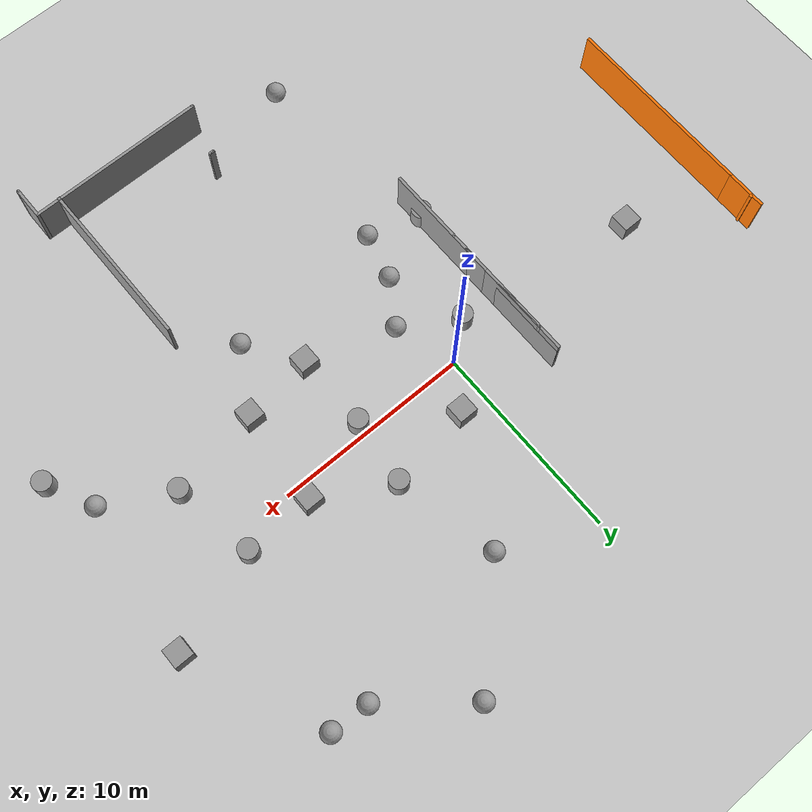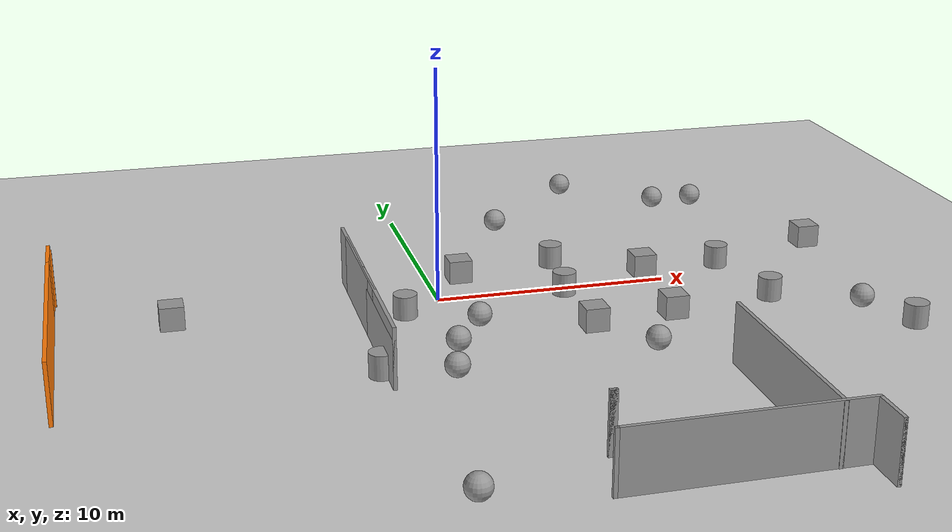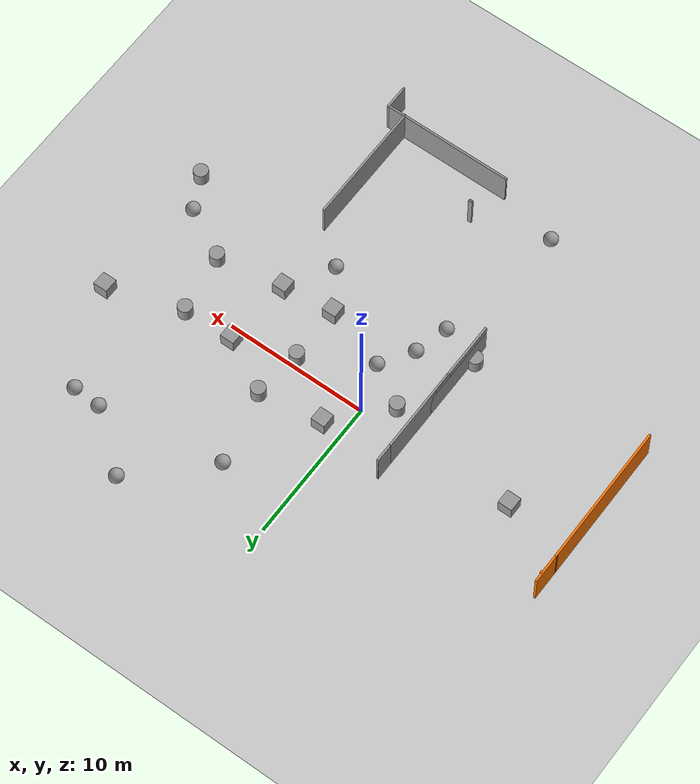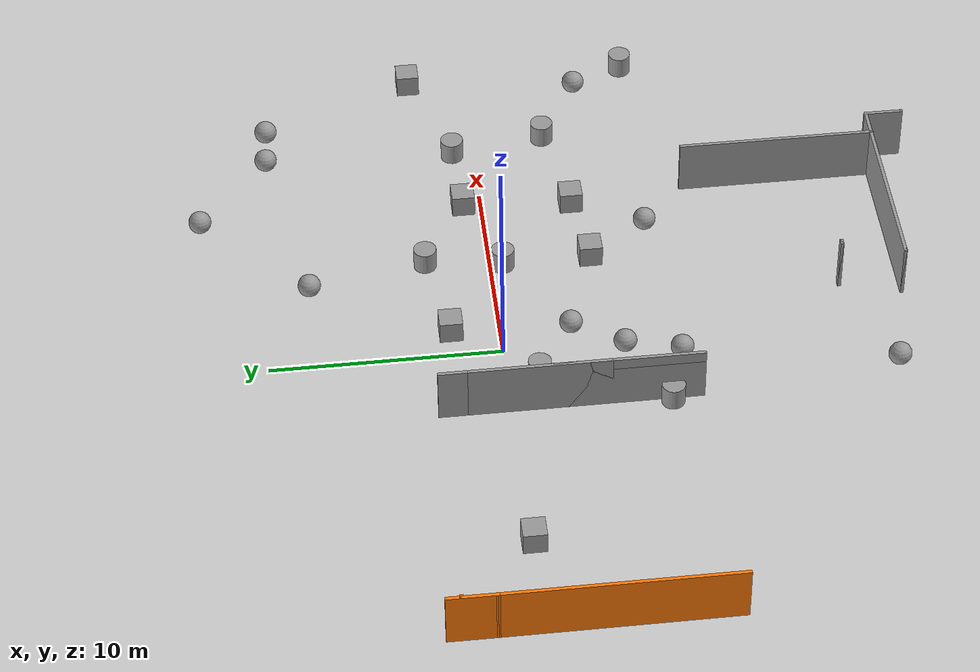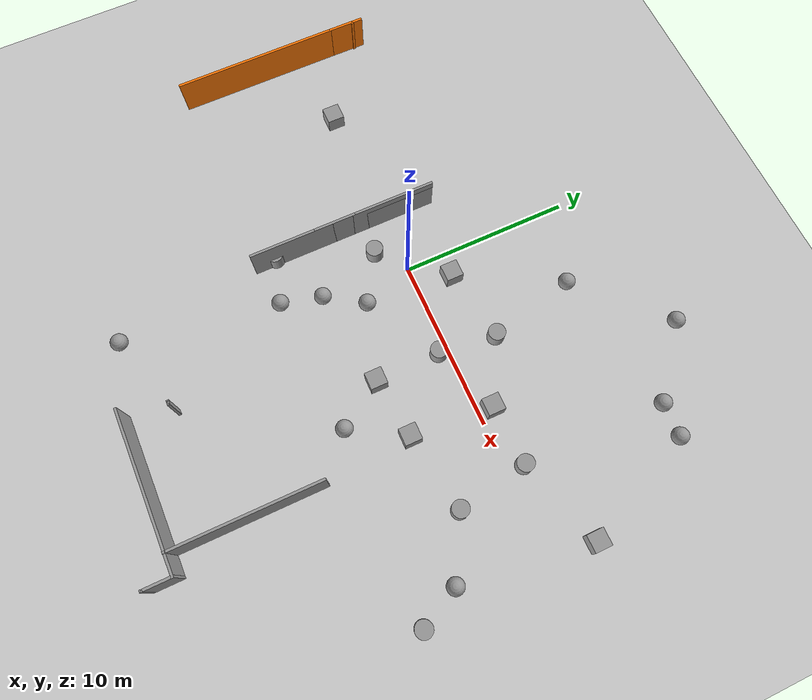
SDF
<sdf version="1.6">
 <world name="default">
  <model name="ground_plane">
   <static>1</static>
   <link name="link">
    <collision name="collision">
     <geometry><plane><normal>0 0 1</normal><size>100 100</size></plane></geometry>
     <surface>
      <contact><collide_bitmask>65535</collide_bitmask></contact>
      <friction><ode><mu>100</mu><mu2>50</mu2></ode></friction>
     </surface>
    </collision>
    <visual name="visual">
     <cast_shadows>0</cast_shadows>
     <geometry><plane><normal>0 0 1</normal><size>100 100</size></plane></geometry>
     <material>
      <script><uri>file://media/materials/scripts/gazebo.material</uri><name>Gazebo/Grey</name></script>
     </material>
    </visual>
   </link>
  </model>
  <model name="Untitled">
   <link name="link_0">
    <pose>9.70155 -2.43092 0 0 -0 0</pose>
    <inertial>
     <mass>1</mass>
     <inertia><ixx>0.1</ixx><ixy>0</ixy><ixz>0</ixz><iyy>0.1</iyy><iyz>0</iyz><izz>0.1</izz></inertia>
    </inertial>
    <visual name="visual">
     <geometry><sphere><radius>0.5</radius></sphere></geometry>
     <material>
      <lighting>1</lighting>
      <script><uri>file://media/materials/scripts/gazebo.material</uri><name>Gazebo/Grey</name></script>
      <shader type="pixel"/>
      <ambient>0.3 0.3 0.3 1</ambient>
      <diffuse>0.7 0.7 0.7 1</diffuse>
      <specular>0.01 0.01 0.01 1</specular>
      <emissive>0 0 0 1</emissive>
     </material>
    </visual>
    <collision name="collision">
     <geometry><sphere><radius>0.5</radius></sphere></geometry>
     <surface>
      <friction>
       <ode><mu>1</mu><mu2>1</mu2><fdir1>0 0 0</fdir1><slip1>0</slip1><slip2>0</slip2></ode>
       <torsional>
        <coefficient>1</coefficient>
        <patch_radius>0</patch_radius>
        <surface_radius>0</surface_radius>
        <use_patch_radius>1</use_patch_radius>
        <ode><slip>0</slip></ode>
       </torsional>
      </friction>
      <bounce><restitution_coefficient>0</restitution_coefficient><threshold>1e+06</threshold></bounce>
      <contact>
       <collide_without_contact>0</collide_without_contact>
       <collide_without_contact_bitmask>1</collide_without_contact_bitmask>
       <collide_bitmask>1</collide_bitmask>
       <ode>
        <soft_cfm>0</soft_cfm>
        <soft_erp>0.2</soft_erp>
        <kp>1e+13</kp>
        <kd>1</kd>
        <max_vel>0.01</max_vel>
        <min_depth>0</min_depth>
       </ode>
       <bullet>
        <split_impulse>1</split_impulse>
        <split_impulse_penetration_threshold>-0.01</split_impulse_penetration_threshold>
        <soft_cfm>0</soft_cfm>
        <soft_erp>0.2</soft_erp>
        <kp>1e+13</kp>
        <kd>1</kd>
       </bullet>
      </contact>
     </surface>
    </collision>
   </link>
   <link name="link_1">
    <pose>-8.50109 4.58038 0 0 -0 0</pose>
    <inertial>
     <mass>1</mass>
     <inertia>
      <ixx>0.166667</ixx>
      <ixy>0</ixy>
      <ixz>0</ixz>
      <iyy>0.166667</iyy>
      <iyz>0</iyz>
      <izz>0.166667</izz>
     </inertia>
    </inertial>
    <visual name="visual">
     <geometry><box><size>1 1 1</size></box></geometry>
     <material>
      <lighting>1</lighting>
      <script><uri>file://media/materials/scripts/gazebo.material</uri><name>Gazebo/Grey</name></script>
      <shader type="pixel"/>
      <ambient>0.3 0.3 0.3 1</ambient>
      <diffuse>0.7 0.7 0.7 1</diffuse>
      <specular>0.01 0.01 0.01 1</specular>
      <emissive>0 0 0 1</emissive>
     </material>
    </visual>
    <collision name="collision">
     <geometry><box><size>1 1 1</size></box></geometry>
     <surface>
      <friction>
       <ode><mu>1</mu><mu2>1</mu2><fdir1>0 0 0</fdir1><slip1>0</slip1><slip2>0</slip2></ode>
       <torsional>
        <coefficient>1</coefficient>
        <patch_radius>0</patch_radius>
        <surface_radius>0</surface_radius>
        <use_patch_radius>1</use_patch_radius>
        <ode><slip>0</slip></ode>
       </torsional>
      </friction>
      <bounce><restitution_coefficient>0</restitution_coefficient><threshold>1e+06</threshold></bounce>
      <contact>
       <collide_without_contact>0</collide_without_contact>
       <collide_without_contact_bitmask>1</collide_without_contact_bitmask>
       <collide_bitmask>1</collide_bitmask>
       <ode>
        <soft_cfm>0</soft_cfm>
        <soft_erp>0.2</soft_erp>
        <kp>1e+13</kp>
        <kd>1</kd>
        <max_vel>0.01</max_vel>
        <min_depth>0</min_depth>
       </ode>
       <bullet>
        <split_impulse>1</split_impulse>
        <split_impulse_penetration_threshold>-0.01</split_impulse_penetration_threshold>
        <soft_cfm>0</soft_cfm>
        <soft_erp>0.2</soft_erp>
        <kp>1e+13</kp>
        <kd>1</kd>
       </bullet>
      </contact>
     </surface>
    </collision>
   </link>
   <link name="link_2">
    <pose>-1.20043 -2.14946 0 0 -0 0</pose>
    <inertial>
     <mass>1</mass>
     <inertia><ixx>0.145833</ixx><ixy>0</ixy><ixz>0</ixz><iyy>0.145833</iyy><iyz>0</iyz><izz>0.125</izz></inertia>
    </inertial>
    <visual name="visual">
     <geometry><cylinder><radius>0.5</radius><length>1</length></cylinder></geometry>
     <material>
      <lighting>1</lighting>
      <script><uri>file://media/materials/scripts/gazebo.material</uri><name>Gazebo/Grey</name></script>
      <shader type="pixel"/>
      <ambient>0.3 0.3 0.3 1</ambient>
      <diffuse>0.7 0.7 0.7 1</diffuse>
      <specular>0.01 0.01 0.01 1</specular>
      <emissive>0 0 0 1</emissive>
     </material>
    </visual>
    <collision name="collision">
     <geometry><cylinder><radius>0.5</radius><length>1</length></cylinder></geometry>
     <surface>
      <friction>
       <ode><mu>1</mu><mu2>1</mu2><fdir1>0 0 0</fdir1><slip1>0</slip1><slip2>0</slip2></ode>
       <torsional>
        <coefficient>1</coefficient>
        <patch_radius>0</patch_radius>
        <surface_radius>0</surface_radius>
        <use_patch_radius>1</use_patch_radius>
        <ode><slip>0</slip></ode>
       </torsional>
      </friction>
      <bounce><restitution_coefficient>0</restitution_coefficient><threshold>1e+06</threshold></bounce>
      <contact>
       <collide_without_contact>0</collide_without_contact>
       <collide_without_contact_bitmask>1</collide_without_contact_bitmask>
       <collide_bitmask>1</collide_bitmask>
       <ode>
        <soft_cfm>0</soft_cfm>
        <soft_erp>0.2</soft_erp>
        <kp>1e+13</kp>
        <kd>1</kd>
        <max_vel>0.01</max_vel>
        <min_depth>0</min_depth>
       </ode>
       <bullet>
        <split_impulse>1</split_impulse>
        <split_impulse_penetration_threshold>-0.01</split_impulse_penetration_threshold>
        <soft_cfm>0</soft_cfm>
        <soft_erp>0.2</soft_erp>
        <kp>1e+13</kp>
        <kd>1</kd>
       </bullet>
      </contact>
     </surface>
    </collision>
   </link>
   <static>0</static>
   <pose>-2.53279 -4.62617 0.5 0 -0 0</pose>
  </model>
  <model name="unit_box">
   <pose>9.36247 0.829326 0.499995 0 1e-05 0</pose>
   <link name="link">
    <inertial>
     <mass>1</mass>
     <inertia>
      <ixx>0.166667</ixx>
      <ixy>0</ixy>
      <ixz>0</ixz>
      <iyy>0.166667</iyy>
      <iyz>0</iyz>
      <izz>0.166667</izz>
     </inertia>
    </inertial>
    <collision name="collision"><geometry><box><size>1 1 1</size></box></geometry></collision>
    <visual name="visual">
     <geometry><box><size>1 1 1</size></box></geometry>
     <material>
      <script><name>Gazebo/Grey</name><uri>file://media/materials/scripts/gazebo.material</uri></script>
     </material>
    </visual>
   </link>
  </model>
  <model name="unit_cylinder">
   <pose>13.6073 -3.20417 0.499992 -3e-06 3e-06 0</pose>
   <link name="link">
    <inertial>
     <mass>1</mass>
     <inertia><ixx>0.145833</ixx><ixy>0</ixy><ixz>0</ixz><iyy>0.145833</iyy><iyz>0</iyz><izz>0.125</izz></inertia>
    </inertial>
    <collision name="collision">
     <geometry><cylinder><radius>0.5</radius><length>1</length></cylinder></geometry>
    </collision>
    <visual name="visual">
     <geometry><cylinder><radius>0.5</radius><length>1</length></cylinder></geometry>
     <material>
      <script><name>Gazebo/Grey</name><uri>file://media/materials/scripts/gazebo.material</uri></script>
     </material>
    </visual>
   </link>
  </model>
  <model name="Untitled_0">
   <pose>-3.49 -2.52 0 0 -0 0</pose>
   <link name="Wall_3">
    <collision name="Wall_3_Collision">
     <geometry><box><size>2.5 0.15 2.5</size></box></geometry>
     <pose>0 0 1.25 0 -0 0</pose>
    </collision>
    <visual name="Wall_3_Visual">
     <pose>0 0 1.25 0 -0 0</pose>
     <geometry><box><size>2.5 0.15 2.5</size></box></geometry>
     <material>
      <script><uri>file://media/materials/scripts/gazebo.material</uri><name>Gazebo/Grey</name></script>
      <ambient>1 1 1 1</ambient>
     </material>
     <meta><layer>0</layer></meta>
    </visual>
    <pose>0 -0.475 0 0 0 -1.5708</pose>
   </link>
   <link name="Wall_4">
    <collision name="Wall_4_Collision">
     <geometry><box><size>0.15 0.15 2.5</size></box></geometry>
     <pose>0 0 1.25 0 -0 0</pose>
    </collision>
    <visual name="Wall_4_Visual">
     <pose>0 0 1.25 0 -0 0</pose>
     <geometry><box><size>0.15 0.15 2.5</size></box></geometry>
     <material>
      <script><uri>file://media/materials/scripts/gazebo.material</uri><name>Gazebo/Grey</name></script>
      <ambient>1 1 1 1</ambient>
     </material>
     <meta><layer>0</layer></meta>
    </visual>
    <pose>0 -1.65 0 0 -0 0</pose>
   </link>
   <link name="Wall_6">
    <collision name="Wall_6_Collision">
     <geometry><box><size>5 0.15 2.5</size></box></geometry>
     <pose>0 0 1.25 0 -0 0</pose>
    </collision>
    <visual name="Wall_6_Visual">
     <pose>0 0 1.25 0 -0 0</pose>
     <geometry><box><size>5 0.15 2.5</size></box></geometry>
     <material>
      <script><uri>file://media/materials/scripts/gazebo.material</uri><name>Gazebo/Grey</name></script>
      <ambient>1 1 1 1</ambient>
     </material>
     <meta><layer>0</layer></meta>
    </visual>
    <pose>0 3.125 0 0 -0 1.5708</pose>
   </link>
   <link name="Wall_7">
    <collision name="Wall_7_Collision">
     <geometry><box><size>11.25 0.15 2</size></box></geometry>
     <pose>0 0 1 0 -0 0</pose>
    </collision>
    <visual name="Wall_7_Visual">
     <pose>0 0 1 0 -0 0</pose>
     <geometry><box><size>11.25 0.15 2</size></box></geometry>
     <material>
      <script><uri>file://media/materials/scripts/gazebo.material</uri><name>Gazebo/Grey</name></script>
      <ambient>1 1 1 1</ambient>
     </material>
     <meta><layer>0</layer></meta>
    </visual>
    <pose>0 0 0 0 0 -1.5708</pose>
   </link>
   <link name="Wall_8">
    <collision name="Wall_8_Collision">
     <geometry><box><size>10 0.15 2.5</size></box></geometry>
     <pose>0 0 1.25 0 -0 0</pose>
    </collision>
    <visual name="Wall_8_Visual">
     <pose>0 0 1.25 0 -0 0</pose>
     <geometry><box><size>10 0.15 2.5</size></box></geometry>
     <material>
      <script><uri>file://media/materials/scripts/gazebo.material</uri><name>Gazebo/Grey</name></script>
      <ambient>1 1 1 1</ambient>
     </material>
     <meta><layer>0</layer></meta>
    </visual>
    <pose>0 -0.625 0 0 -0 1.5708</pose>
   </link>
   <link name="Wall_9">
    <collision name="Wall_9_Collision">
     <geometry><box><size>0.15 0.15 2.5</size></box></geometry>
     <pose>0 0 1.25 0 -0 0</pose>
    </collision>
    <visual name="Wall_9_Visual">
     <pose>0 0 1.25 0 -0 0</pose>
     <geometry><box><size>0.15 0.15 2.5</size></box></geometry>
     <material>
      <script><uri>file://media/materials/scripts/gazebo.material</uri><name>Gazebo/Grey</name></script>
      <ambient>1 1 1 1</ambient>
     </material>
     <meta><layer>0</layer></meta>
    </visual>
    <pose>0 4.3 0 0 -0 0</pose>
   </link>
   <static>1</static>
  </model>
  <model name="unit_sphere">
   <pose>-1.00192 -7.56104 0.5 0 -0 0</pose>
   <link name="link">
    <inertial>
     <mass>1</mass>
     <inertia><ixx>0.1</ixx><ixy>0</ixy><ixz>0</ixz><iyy>0.1</iyy><iyz>0</iyz><izz>0.1</izz></inertia>
    </inertial>
    <collision name="collision"><geometry><sphere><radius>0.5</radius></sphere></geometry></collision>
    <visual name="visual">
     <geometry><sphere><radius>0.5</radius></sphere></geometry>
     <material>
      <script><name>Gazebo/Grey</name><uri>file://media/materials/scripts/gazebo.material</uri></script>
     </material>
    </visual>
   </link>
  </model>
  <model name="unit_cylinder_0">
   <pose>18.0993 -7.39339 0.499992 -3e-06 3e-06 0</pose>
   <link name="link">
    <inertial>
     <mass>1</mass>
     <inertia><ixx>0.145833</ixx><ixy>0</ixy><ixz>0</ixz><iyy>0.145833</iyy><iyz>0</iyz><izz>0.125</izz></inertia>
    </inertial>
    <collision name="collision">
     <geometry><cylinder><radius>0.5</radius><length>1</length></cylinder></geometry>
    </collision>
    <visual name="visual">
     <geometry><cylinder><radius>0.5</radius><length>1</length></cylinder></geometry>
     <material>
      <script><name>Gazebo/Grey</name><uri>file://media/materials/scripts/gazebo.material</uri></script>
     </material>
    </visual>
   </link>
  </model>
  <model name="unit_box_0">
   <pose>17.9517 2.58922 0.499995 0 1e-05 0</pose>
   <link name="link">
    <inertial>
     <mass>1</mass>
     <inertia>
      <ixx>0.166667</ixx>
      <ixy>0</ixy>
      <ixz>0</ixz>
      <iyy>0.166667</iyy>
      <iyz>0</iyz>
      <izz>0.166667</izz>
     </inertia>
    </inertial>
    <collision name="collision"><geometry><box><size>1 1 1</size></box></geometry></collision>
    <visual name="visual">
     <geometry><box><size>1 1 1</size></box></geometry>
     <material>
      <script><name>Gazebo/Grey</name><uri>file://media/materials/scripts/gazebo.material</uri></script>
     </material>
    </visual>
   </link>
  </model>
  <model name="unit_cylinder_1">
   <pose>5.77175 2.83193 0.499992 -3e-06 3e-06 0</pose>
   <link name="link">
    <inertial>
     <mass>1</mass>
     <inertia><ixx>0.145833</ixx><ixy>0</ixy><ixz>0</ixz><iyy>0.145833</iyy><iyz>0</iyz><izz>0.125</izz></inertia>
    </inertial>
    <collision name="collision">
     <geometry><cylinder><radius>0.5</radius><length>1</length></cylinder></geometry>
    </collision>
    <visual name="visual">
     <geometry><cylinder><radius>0.5</radius><length>1</length></cylinder></geometry>
     <material>
      <script><name>Gazebo/Grey</name><uri>file://media/materials/scripts/gazebo.material</uri></script>
     </material>
    </visual>
   </link>
  </model>
  <model name="Untitled_1">
   <pose>-2.45197 -7.66378 0 0 -0 0</pose>
   <link name="Wall_11">
    <collision name="Wall_11_Collision">
     <geometry><box><size>0.3 0.15 2.5</size></box></geometry>
     <pose>0 0 1.25 0 -0 0</pose>
    </collision>
    <visual name="Wall_11_Visual">
     <pose>0 0 1.25 0 -0 0</pose>
     <geometry><box><size>0.3 0.15 2.5</size></box></geometry>
     <material>
      <script><uri>file://media/materials/scripts/gazebo.material</uri><name>Gazebo/Grey</name></script>
      <ambient>1 1 1 1</ambient>
     </material>
     <meta><layer>0</layer></meta>
    </visual>
    <pose>4.96192 -7.30972 0 0 -0 3.14159</pose>
   </link>
   <link name="Wall_12">
    <collision name="Wall_12_Collision">
     <geometry><box><size>0.3 0.15 2.5</size></box></geometry>
     <pose>0 0 1.25 0 -0 0</pose>
    </collision>
    <visual name="Wall_12_Visual">
     <pose>0 0 1.25 0 -0 0</pose>
     <geometry><box><size>0.3 0.15 2.5</size></box></geometry>
     <material>
      <script><uri>file://media/materials/scripts/gazebo.material</uri><name>Gazebo/Grey</name></script>
      <ambient>1 1 1 1</ambient>
     </material>
     <meta><layer>0</layer></meta>
    </visual>
    <pose>4.96192 -7.30972 0 0 -0 0</pose>
   </link>
   <link name="Wall_14">
    <collision name="Wall_14_Collision">
     <geometry><box><size>9.25 0.15 2.5</size></box></geometry>
     <pose>0 0 1.25 0 -0 0</pose>
    </collision>
    <visual name="Wall_14_Visual">
     <pose>0 0 1.25 0 -0 0</pose>
     <geometry><box><size>9.25 0.15 2.5</size></box></geometry>
     <material>
      <script><uri>file://media/materials/scripts/gazebo.material</uri><name>Gazebo/Grey</name></script>
      <ambient>1 1 1 1</ambient>
     </material>
     <meta><layer>0</layer></meta>
    </visual>
    <pose>8.6994 -9.93933 0 0 -0 3.14159</pose>
   </link>
   <link name="Wall_15">
    <collision name="Wall_15_Collision">
     <geometry><box><size>0.15 0.15 2.5</size></box></geometry>
     <pose>0 0 1.25 0 -0 0</pose>
    </collision>
    <visual name="Wall_15_Visual">
     <pose>0 0 1.25 0 -0 0</pose>
     <geometry><box><size>0.15 0.15 2.5</size></box></geometry>
     <material>
      <script><uri>file://media/materials/scripts/gazebo.material</uri><name>Gazebo/Grey</name></script>
      <ambient>1 1 1 1</ambient>
     </material>
     <meta><layer>0</layer></meta>
    </visual>
    <pose>4.1494 -9.93933 0 0 -0 0</pose>
   </link>
   <link name="Wall_16">
    <collision name="Wall_16_Collision">
     <geometry><box><size>0.15 0.15 2.5</size></box></geometry>
     <pose>0 0 1.25 0 -0 0</pose>
    </collision>
    <visual name="Wall_16_Visual">
     <pose>0 0 1.25 0 -0 0</pose>
     <geometry><box><size>0.15 0.15 2.5</size></box></geometry>
     <material>
      <script><uri>file://media/materials/scripts/gazebo.material</uri><name>Gazebo/Grey</name></script>
      <ambient>1 1 1 1</ambient>
     </material>
     <meta><layer>0</layer></meta>
    </visual>
    <pose>4.1494 -9.93933 0 0 -0 0</pose>
   </link>
   <link name="Wall_18">
    <collision name="Wall_18_Collision">
     <geometry><box><size>1.75 0.15 2.5</size></box></geometry>
     <pose>0 0 1.25 0 -0 0</pose>
    </collision>
    <visual name="Wall_18_Visual">
     <pose>0 0 1.25 0 -0 0</pose>
     <geometry><box><size>1.75 0.15 2.5</size></box></geometry>
     <material>
      <script><uri>file://media/materials/scripts/gazebo.material</uri><name>Gazebo/Grey</name></script>
      <ambient>1 1 1 1</ambient>
     </material>
     <meta><layer>0</layer></meta>
    </visual>
    <pose>13.2494 -10.7393 0 0 0 -1.5708</pose>
   </link>
   <link name="Wall_19">
    <collision name="Wall_19_Collision">
     <geometry><box><size>0.15 0.15 2.5</size></box></geometry>
     <pose>0 0 1.25 0 -0 0</pose>
    </collision>
    <visual name="Wall_19_Visual">
     <pose>0 0 1.25 0 -0 0</pose>
     <geometry><box><size>0.15 0.15 2.5</size></box></geometry>
     <material>
      <script><uri>file://media/materials/scripts/gazebo.material</uri><name>Gazebo/Grey</name></script>
      <ambient>1 1 1 1</ambient>
     </material>
     <meta><layer>0</layer></meta>
    </visual>
    <pose>13.2494 -11.5393 0 0 -0 0</pose>
   </link>
   <link name="Wall_21">
    <collision name="Wall_21_Collision">
     <geometry><box><size>8.75 0.15 2.5</size></box></geometry>
     <pose>0 0 1.25 0 -0 0</pose>
    </collision>
    <visual name="Wall_21_Visual">
     <pose>0 0 1.25 0 -0 0</pose>
     <geometry><box><size>8.75 0.15 2.5</size></box></geometry>
     <material>
      <script><uri>file://media/materials/scripts/gazebo.material</uri><name>Gazebo/Grey</name></script>
      <ambient>1 1 1 1</ambient>
     </material>
     <meta><layer>0</layer></meta>
    </visual>
    <pose>11.9953 -5.66275 0 0 0 -1.5708</pose>
   </link>
   <link name="Wall_22">
    <collision name="Wall_22_Collision">
     <geometry><box><size>0.16 0.15 2.5</size></box></geometry>
     <pose>0 0 1.25 0 -0 0</pose>
    </collision>
    <visual name="Wall_22_Visual">
     <pose>0 0 1.25 0 -0 0</pose>
     <geometry><box><size>0.16 0.15 2.5</size></box></geometry>
     <material>
      <script><uri>file://media/materials/scripts/gazebo.material</uri><name>Gazebo/Grey</name></script>
      <ambient>1 1 1 1</ambient>
     </material>
     <meta><layer>0</layer></meta>
    </visual>
    <pose>12.0003 -9.96275 0 0 -0 0</pose>
   </link>
   <link name="Wall_24">
    <collision name="Wall_24_Collision">
     <geometry><box><size>10 0.15 2.5</size></box></geometry>
     <pose>0 0 1.25 0 -0 0</pose>
    </collision>
    <visual name="Wall_24_Visual">
     <pose>0 0 1.25 0 -0 0</pose>
     <geometry><box><size>10 0.15 2.5</size></box></geometry>
     <material>
      <script><uri>file://media/materials/scripts/gazebo.material</uri><name>Gazebo/Grey</name></script>
      <ambient>0.996078 0.47451 0.0196078 1</ambient>
     </material>
     <meta><layer>0</layer></meta>
    </visual>
    <pose>-13.249 4.61383 0 0 -0 1.5708</pose>
   </link>
   <link name="Wall_25">
    <collision name="Wall_25_Collision">
     <geometry><box><size>2.15002 0.15 2.5</size></box></geometry>
     <pose>0 0 1.25 0 -0 0</pose>
    </collision>
    <visual name="Wall_25_Visual">
     <pose>0 0 1.25 0 -0 0</pose>
     <geometry><box><size>2.15002 0.15 2.5</size></box></geometry>
     <material>
      <script><uri>file://media/materials/scripts/gazebo.material</uri><name>Gazebo/Grey</name></script>
      <ambient>0.996078 0.47451 0.0196078 1</ambient>
     </material>
     <meta><layer>0</layer></meta>
    </visual>
    <pose>-13.244 10.539 0 0 -0 1.56579</pose>
   </link>
   <link name="Wall_27">
    <collision name="Wall_27_Collision">
     <geometry><box><size>0.16 0.15 2.5</size></box></geometry>
     <pose>0 0 1.25 0 -0 0</pose>
    </collision>
    <visual name="Wall_27_Visual">
     <pose>0 0 1.25 0 -0 0</pose>
     <geometry><box><size>0.16 0.15 2.5</size></box></geometry>
     <material>
      <script><uri>file://media/materials/scripts/gazebo.material</uri><name>Gazebo/Grey</name></script>
      <ambient>0.996078 0.47451 0.0196078 1</ambient>
     </material>
     <meta><layer>0</layer></meta>
    </visual>
    <pose>-13.1773 10.9593 0 0 -0 0</pose>
   </link>
   <static>1</static>
  </model>
  <model name="unit_sphere_0">
   <pose>-2.53782 -16.6842 0.5 0 -0 0</pose>
   <link name="link">
    <inertial>
     <mass>1</mass>
     <inertia><ixx>0.1</ixx><ixy>0</ixy><ixz>0</ixz><iyy>0.1</iyy><iyz>0</iyz><izz>0.1</izz></inertia>
    </inertial>
    <collision name="collision"><geometry><sphere><radius>0.5</radius></sphere></geometry></collision>
    <visual name="visual">
     <geometry><sphere><radius>0.5</radius></sphere></geometry>
     <material>
      <script><name>Gazebo/Grey</name><uri>file://media/materials/scripts/gazebo.material</uri></script>
     </material>
    </visual>
   </link>
  </model>
  <model name="unit_sphere_4">
   <pose>-0.382453 -5.19319 0.5 0 -0 0</pose>
   <link name="link">
    <inertial>
     <mass>1</mass>
     <inertia><ixx>0.1</ixx><ixy>0</ixy><ixz>0</ixz><iyy>0.1</iyy><iyz>0</iyz><izz>0.1</izz></inertia>
    </inertial>
    <collision name="collision"><geometry><sphere><radius>0.5</radius></sphere></geometry></collision>
    <visual name="visual">
     <geometry><sphere><radius>0.5</radius></sphere></geometry>
     <material>
      <script><name>Gazebo/Grey</name><uri>file://media/materials/scripts/gazebo.material</uri></script>
     </material>
    </visual>
   </link>
  </model>
  <model name="unit_box_3">
   <pose>5.42171 -4.39975 0.499995 0 1e-05 0</pose>
   <link name="link">
    <inertial>
     <mass>1</mass>
     <inertia>
      <ixx>0.166667</ixx>
      <ixy>0</ixy>
      <ixz>0</ixz>
      <iyy>0.166667</iyy>
      <iyz>0</iyz>
      <izz>0.166667</izz>
     </inertia>
    </inertial>
    <collision name="collision"><geometry><box><size>1 1 1</size></box></geometry></collision>
    <visual name="visual">
     <geometry><box><size>1 1 1</size></box></geometry>
     <material>
      <script><name>Gazebo/Grey</name><uri>file://media/materials/scripts/gazebo.material</uri></script>
     </material>
    </visual>
   </link>
  </model>
  <model name="unit_sphere_5">
   <pose>4.57889 7.98251 0.5 0 -0 0</pose>
   <link name="link">
    <inertial>
     <mass>1</mass>
     <inertia><ixx>0.1</ixx><ixy>0</ixy><ixz>0</ixz><iyy>0.1</iyy><iyz>0</iyz><izz>0.1</izz></inertia>
    </inertial>
    <collision name="collision"><geometry><sphere><radius>0.5</radius></sphere></geometry></collision>
    <visual name="visual">
     <geometry><sphere><radius>0.5</radius></sphere></geometry>
     <material>
      <script><name>Gazebo/Grey</name><uri>file://media/materials/scripts/gazebo.material</uri></script>
     </material>
    </visual>
   </link>
  </model>
  <model name="unit_sphere_5_clone">
   <pose>15.0085 9.32433 0.5 0 -0 0</pose>
   <link name="link">
    <inertial>
     <mass>1</mass>
     <inertia><ixx>0.1</ixx><ixy>0</ixy><ixz>0</ixz><iyy>0.1</iyy><iyz>0</iyz><izz>0.1</izz></inertia>
    </inertial>
    <collision name="collision"><geometry><sphere><radius>0.5</radius></sphere></geometry></collision>
    <visual name="visual">
     <geometry><sphere><radius>0.5</radius></sphere></geometry>
     <material>
      <script><name>Gazebo/Grey</name><uri>file://media/materials/scripts/gazebo.material</uri></script>
     </material>
    </visual>
   </link>
  </model>
  <model name="unit_sphere_5_clone_0">
   <pose>9.21358 12.538 0.5 0 -0 0</pose>
   <link name="link">
    <inertial>
     <mass>1</mass>
     <inertia><ixx>0.1</ixx><ixy>0</ixy><ixz>0</ixz><iyy>0.1</iyy><iyz>0</iyz><izz>0.1</izz></inertia>
    </inertial>
    <collision name="collision"><geometry><sphere><radius>0.5</radius></sphere></geometry></collision>
    <visual name="visual">
     <geometry><sphere><radius>0.5</radius></sphere></geometry>
     <material>
      <script><name>Gazebo/Grey</name><uri>file://media/materials/scripts/gazebo.material</uri></script>
     </material>
    </visual>
   </link>
  </model>
  <model name="unit_sphere_6">
   <pose>13.0481 9.42512 0.5 0 -0 0</pose>
   <link name="link">
    <inertial>
     <mass>1</mass>
     <inertia><ixx>0.1</ixx><ixy>0</ixy><ixz>0</ixz><iyy>0.1</iyy><iyz>0</iyz><izz>0.1</izz></inertia>
    </inertial>
    <collision name="collision"><geometry><sphere><radius>0.5</radius></sphere></geometry></collision>
    <visual name="visual">
     <geometry><sphere><radius>0.5</radius></sphere></geometry>
     <material>
      <script><name>Gazebo/Grey</name><uri>file://media/materials/scripts/gazebo.material</uri></script>
     </material>
    </visual>
   </link>
  </model>
  <model name="unit_sphere_7">
   <pose>16.935 -5.06358 0.5 0 -0 0</pose>
   <link name="link">
    <inertial>
     <mass>1</mass>
     <inertia><ixx>0.1</ixx><ixy>0</ixy><ixz>0</ixz><iyy>0.1</iyy><iyz>0</iyz><izz>0.1</izz></inertia>
    </inertial>
    <collision name="collision"><geometry><sphere><radius>0.5</radius></sphere></geometry></collision>
    <visual name="visual">
     <geometry><sphere><radius>0.5</radius></sphere></geometry>
     <material>
      <script><name>Gazebo/Grey</name><uri>file://media/materials/scripts/gazebo.material</uri></script>
     </material>
    </visual>
   </link>
  </model>
  <model name="unit_cylinder_5">
   <pose>5.36288 -0.550927 0.499998 3e-06 -4e-06 0</pose>
   <link name="link">
    <inertial>
     <mass>1</mass>
     <inertia><ixx>0.145833</ixx><ixy>0</ixy><ixz>0</ixz><iyy>0.145833</iyy><iyz>0</iyz><izz>0.125</izz></inertia>
    </inertial>
    <collision name="collision">
     <geometry><cylinder><radius>0.5</radius><length>1</length></cylinder></geometry>
    </collision>
    <visual name="visual">
     <geometry><cylinder><radius>0.5</radius><length>1</length></cylinder></geometry>
     <material>
      <script><name>Gazebo/Grey</name><uri>file://media/materials/scripts/gazebo.material</uri></script>
     </material>
    </visual>
   </link>
  </model>
  <model name="unit_cylinder_6">
   <pose>-1.70316 -1.36645 0.499992 -3e-06 -4e-06 -0</pose>
   <link name="link">
    <inertial>
     <mass>1</mass>
     <inertia><ixx>0.145833</ixx><ixy>0</ixy><ixz>0</ixz><iyy>0.145833</iyy><iyz>0</iyz><izz>0.125</izz></inertia>
    </inertial>
    <collision name="collision">
     <geometry><cylinder><radius>0.5</radius><length>1</length></cylinder></geometry>
    </collision>
    <visual name="visual">
     <geometry><cylinder><radius>0.5</radius><length>1</length></cylinder></geometry>
     <material>
      <script><name>Gazebo/Grey</name><uri>file://media/materials/scripts/gazebo.material</uri></script>
     </material>
    </visual>
   </link>
  </model>
  <model name="unit_box_4">
   <pose>1.39536 2.13124 0.499995 -1e-05 0 0</pose>
   <link name="link">
    <inertial>
     <mass>1</mass>
     <inertia>
      <ixx>0.166667</ixx>
      <ixy>0</ixy>
      <ixz>0</ixz>
      <iyy>0.166667</iyy>
      <iyz>0</iyz>
      <izz>0.166667</izz>
     </inertia>
    </inertial>
    <collision name="collision"><geometry><box><size>1 1 1</size></box></geometry></collision>
    <visual name="visual">
     <geometry><box><size>1 1 1</size></box></geometry>
     <material>
      <script><name>Gazebo/Grey</name><uri>file://media/materials/scripts/gazebo.material</uri></script>
     </material>
    </visual>
   </link>
  </model>
  <model name="unit_sphere_8">
   <pose>1.02777 -3.02401 0.5 0 -0 0</pose>
   <link name="link">
    <inertial>
     <mass>1</mass>
     <inertia><ixx>0.1</ixx><ixy>0</ixy><ixz>0</ixz><iyy>0.1</iyy><iyz>0</iyz><izz>0.1</izz></inertia>
    </inertial>
    <collision name="collision"><geometry><sphere><radius>0.5</radius></sphere></geometry></collision>
    <visual name="visual">
     <geometry><sphere><radius>0.5</radius></sphere></geometry>
     <material>
      <script><name>Gazebo/Grey</name><uri>file://media/materials/scripts/gazebo.material</uri></script>
     </material>
    </visual>
   </link>
  </model>
  <model name="unit_box_5">
   <pose>8.98434 -3.96256 0.499995 -1e-05 0 0</pose>
   <link name="link">
    <inertial>
     <mass>1</mass>
     <inertia>
      <ixx>0.166667</ixx>
      <ixy>0</ixy>
      <ixz>0</ixz>
      <iyy>0.166667</iyy>
      <iyz>0</iyz>
      <izz>0.166667</izz>
     </inertia>
    </inertial>
    <collision name="collision"><geometry><box><size>1 1 1</size></box></geometry></collision>
    <visual name="visual">
     <geometry><box><size>1 1 1</size></box></geometry>
     <material>
      <script><name>Gazebo/Grey</name><uri>file://media/materials/scripts/gazebo.material</uri></script>
     </material>
    </visual>
   </link>
  </model>
  <model name="unit_cylinder_7">
   <pose>12.8983 0.966335 0.499997 3e-06 4e-06 -0</pose>
   <link name="link">
    <inertial>
     <mass>1</mass>
     <inertia><ixx>0.145833</ixx><ixy>0</ixy><ixz>0</ixz><iyy>0.145833</iyy><iyz>0</iyz><izz>0.125</izz></inertia>
    </inertial>
    <collision name="collision">
     <geometry><cylinder><radius>0.5</radius><length>1</length></cylinder></geometry>
    </collision>
    <visual name="visual">
     <geometry><cylinder><radius>0.5</radius><length>1</length></cylinder></geometry>
     <material>
      <script><name>Gazebo/Grey</name><uri>file://media/materials/scripts/gazebo.material</uri></script>
     </material>
    </visual>
   </link>
  </model>
 </world>
</sdf>
